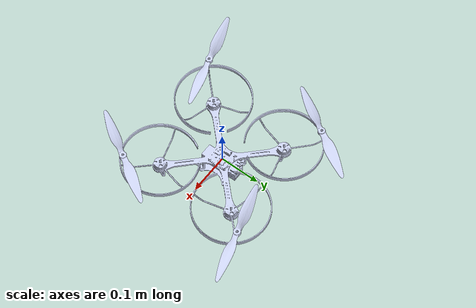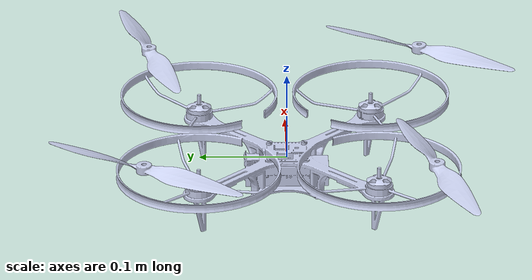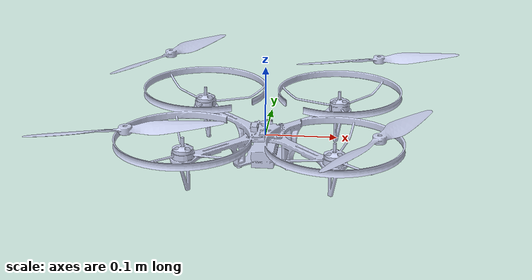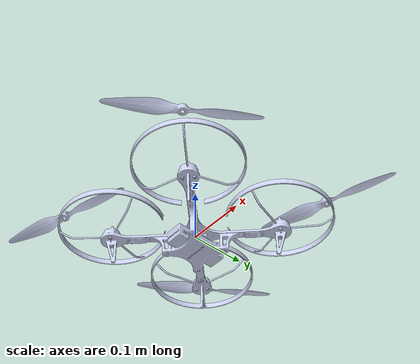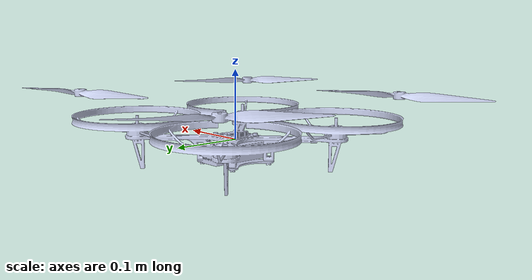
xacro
<?xml version="1.0" encoding="utf-8"?>
<robot xmlns:xacro="http://www.ros.org/wiki/xacro" name="drone_model">

  <!-- Base Link -->
  <xacro:property name="base_link_mass" value="0.575473884994464"/>
  <xacro:property name="base_link_ixx" value="0.00069924928975311"/>
  <xacro:property name="base_link_ixy" value="6.64874579562384E-08"/>
  <xacro:property name="base_link_ixz" value="-1.23079400039438E-07"/>
  <xacro:property name="base_link_iyy" value="0.000969050918347551"/>
  <xacro:property name="base_link_iyz" value="1.18579410704994E-07"/>
  <xacro:property name="base_link_izz" value="0.00161082001380927"/>

  <link name="base_link">

    <inertial>
      <origin xyz="-0.00301668935937149 -1.74355309715546E-05 0.00676026779386868" rpy="0 0 0" />
      <mass value="${base_link_mass}" />
      <inertia ixx="${base_link_ixx}" ixy="${base_link_ixy}" ixz="${base_link_ixz}"
               iyy="${base_link_iyy}" iyz="${base_link_iyz}" izz="${base_link_izz}" />
    </inertial>

    <collision name="drone__base_link__collision">
      <origin xyz="0 0 0" rpy="0 0 0" />
      <geometry>
        <mesh filename="package://drone_model/meshes/collisions/base_link.stl" />
      </geometry>
    </collision>

    <visual name="drone__base_link__visual">
      <origin xyz="0 0 0" rpy="0 0 0" />
      <geometry>
        <mesh filename="package://drone_model/meshes/visuals/base_link.dae" />
      </geometry>
      <material name="drone_material">
        <color rgba="0.79216 0.81961 0.93333 1" />
      </material>
    </visual>

  </link>

  <!-- Propeller 1 -->
  <xacro:property name="prop1_mass" value="0.010198"/>
  <xacro:property name="prop1_ixx" value="2.3325E-05"/>
  <xacro:property name="prop1_ixy" value="-1.5484E-05"/>
  <xacro:property name="prop1_ixz" value="-5.7308E-11"/>
  <xacro:property name="prop1_iyy" value="1.0681E-05"/>
  <xacro:property name="prop1_iyz" value="-8.6255E-11"/>
  <xacro:property name="prop1_izz" value="3.3922E-05"/>

  <link name="prop1_link">

    <inertial>
      <origin xyz="8.1826E-05 2.9373E-05 -0.00052954" rpy="0 0 0" />
      <mass value="${prop1_mass}" />
      <inertia ixx="${prop1_ixx}" ixy="${prop1_ixy}" ixz="${prop1_ixz}"
               iyy="${prop1_iyy}" iyz="${prop1_iyz}" izz="${prop1_izz}" />
    </inertial>

     <collision name="drone__prop1_link__collision">
      <origin xyz="0 0 0" rpy="0 0 0" />
      <geometry>
        <mesh filename="package://drone_model/meshes/collisions/prop1_link.stl" />
      </geometry>
    </collision>

    <visual name="drone__prop1_link__visual">
      <origin xyz="0 0 0" rpy="0 0 0" />
      <geometry>
        <mesh filename="package://drone_model/meshes/visuals/prop1_link.dae" />
      </geometry>
      <material name="drone_material">
        <color rgba="0.79216 0.81961 0.93333 1" />
      </material>
    </visual>

  </link>

  <joint name="prop1" type="continuous">
    <origin xyz="-0.16155 0.15844 0.065147" rpy="0 0 0" />
    <parent link="base_link" />
    <child link="prop1_link" />
    <axis xyz="0 0 1" />
    <limit effort="100" velocity="100" />
  </joint>

  <!-- Propeller 2 -->
  <xacro:property name="prop2_mass" value="0.010199"/>
  <xacro:property name="prop2_ixx" value="3.1441E-06"/>
  <xacro:property name="prop2_ixy" value="-9.3627E-06"/>
  <xacro:property name="prop2_ixz" value="9.6429E-11"/>
  <xacro:property name="prop2_iyy" value="3.0862E-05"/>
  <xacro:property name="prop2_iyz" value="3.0225E-11"/>
  <xacro:property name="prop2_izz" value="3.3922E-05"/>

  <link name="prop2_link">

    <inertial>
      <origin xyz="3.5088E-05 -7.1118E-05 0.00052961" rpy="0 0 0" />
      <mass value="${prop2_mass}" />
      <inertia ixx="${prop2_ixx}" ixy="${prop2_ixy}" ixz="${prop2_ixz}"
               iyy="${prop2_iyy}" iyz="${prop2_iyz}" izz="${prop2_izz}" />
    </inertial>

    <collision name="drone__prop2_link__collision">
      <origin xyz="0 0 0" rpy="0 0 0" />
      <geometry>
        <mesh filename="package://drone_model/meshes/collisions/prop2_link.stl" />
      </geometry>
    </collision>

    <visual name="drone__prop2_link__visual">
      <origin xyz="0 0 0" rpy="0 0 0" />
      <geometry>
        <mesh filename="package://drone_model/meshes/visuals/prop2_link.dae" />
      </geometry>
      <material name="drone_material">
        <color rgba="0.79216 0.81961 0.93333 1" />
      </material>
    </visual>

  </link>

  <joint name="prop2" type="continuous">
    <origin xyz="0.15631 0.15852 0.065147" rpy="0 0 0" />
    <parent link="base_link" />
    <child link="prop2_link" />
    <axis xyz="0 0 1" />
    <limit effort="100" velocity="100" />
  </joint>

  <!-- Propeller 3 -->
  <xacro:property name="prop3_mass" value="0.010198"/>
  <xacro:property name="prop3_ixx" value="2.3695E-05"/>
  <xacro:property name="prop3_ixy" value="-1.5328E-05"/>
  <xacro:property name="prop3_ixz" value="-6.068E-11"/>
  <xacro:property name="prop3_iyy" value="1.0311E-05"/>
  <xacro:property name="prop3_iyz" value="-9.9602E-11"/>
  <xacro:property name="prop3_izz" value="3.3922E-05"/>

  <link name="prop3_link">

    <inertial>
      <origin xyz="-6.791E-05 2.1571E-05 -0.00052957" rpy="0 0 0" />
      <mass value="${prop3_mass}" />
      <inertia ixx="${prop3_ixx}" ixy="${prop3_ixy}" ixz="${prop3_ixz}"
               iyy="${prop3_iyy}" iyz="${prop3_iyz}" izz="${prop3_izz}" />
    </inertial>

    <collision name="drone__prop3_link__collision">
      <origin xyz="0 0 0" rpy="0 0 0" />
      <geometry>
        <mesh filename="package://drone_model/meshes/collisions/prop3_link.stl" />
      </geometry>
    </collision>

    <visual name="drone__prop3_link__visual">
      <origin xyz="0 0 0" rpy="0 0 0" />
      <geometry>
        <mesh filename="package://drone_model/meshes/visuals/prop3_link.dae" />
      </geometry>
      <material name="drone_material">
        <color rgba="0.79216 0.81961 0.93333 1" />
      </material>
    </visual>

  </link>

  <joint name="prop3" type="continuous">
    <origin xyz="0.1564 -0.15938 0.065147" rpy="0 0 0" />
    <parent link="base_link" />
    <child link="prop3_link" />
    <axis xyz="0 0 1" />
    <limit effort="100" velocity="100" />
  </joint>

  <!-- Propeller 4 -->
  <xacro:property name="prop4_mass" value="0.010199"/>
  <xacro:property name="prop4_ixx" value="3.1704E-06"/>
  <xacro:property name="prop4_ixy" value="-9.4015E-06"/>
  <xacro:property name="prop4_ixz" value="9.4615E-11"/>
  <xacro:property name="prop4_iyy" value="3.0835E-05"/>
  <xacro:property name="prop4_iyz" value="2.9414E-11"/>
  <xacro:property name="prop4_izz" value="3.3922E-05"/>

  <link name="prop4_link">

    <inertial>
      <origin xyz="0.00026769 3.3964E-05 0.00052961" rpy="0 0 0" />
      <mass value="${prop4_mass}" />
      <inertia ixx="${prop4_ixx}" ixy="${prop4_ixy}" ixz="${prop4_ixz}"
               iyy="${prop4_iyy}" iyz="${prop4_iyz}" izz="${prop4_izz}" />
    </inertial>

    <collision name="drone__prop4_link__collision">
      <origin xyz="0 0 0" rpy="0 0 0" />
      <geometry>
        <mesh filename="package://drone_model/meshes/collisions/prop4_link.stl" />
      </geometry>
    </collision>

    <visual name="drone__prop4_link__visual">
      <origin xyz="0 0 0" rpy="0 0 0" />
      <geometry>
        <mesh filename="package://drone_model/meshes/visuals/prop4_link.dae" />
      </geometry>
      <material name="drone_material">
        <color rgba="0.79216 0.81961 0.93333 1" />
      </material>
    </visual>

  </link>

  <joint name="prop4" type="continuous">
    <origin xyz="-0.16174 -0.15938 0.065147" rpy="0 0 0" />
    <parent link="base_link" />
    <child link="prop4_link" />
    <axis xyz="0 0 1" />
    <limit effort="100" velocity="100" />
  </joint>

</robot>
